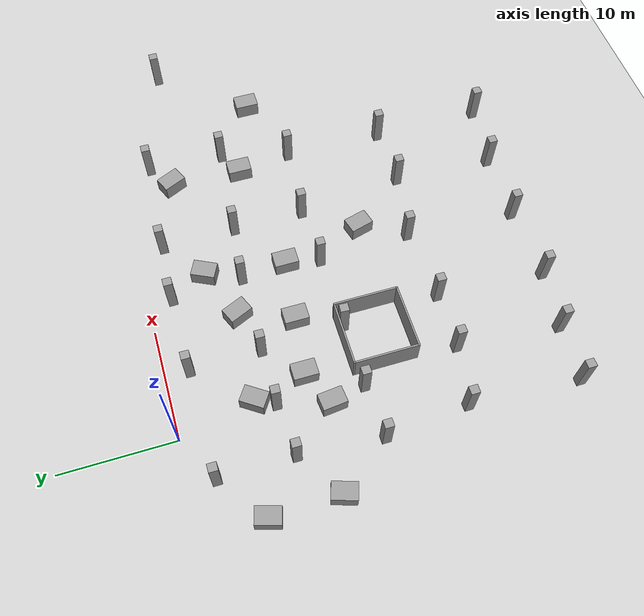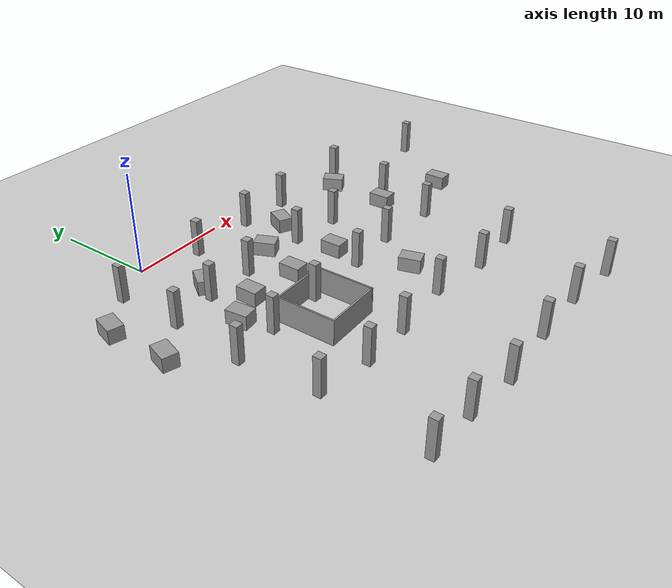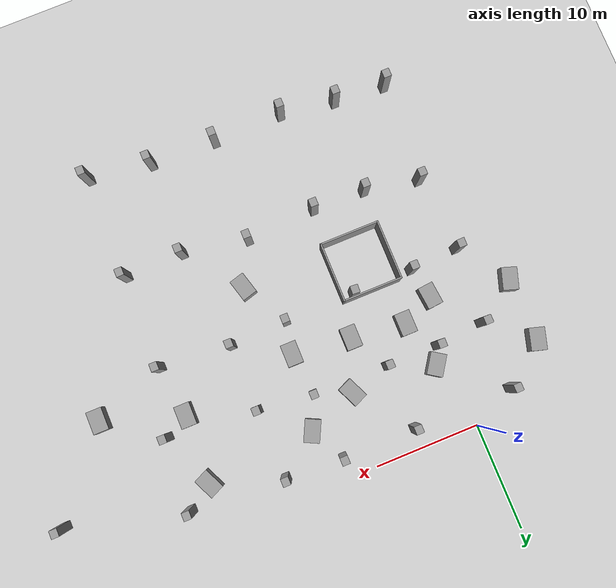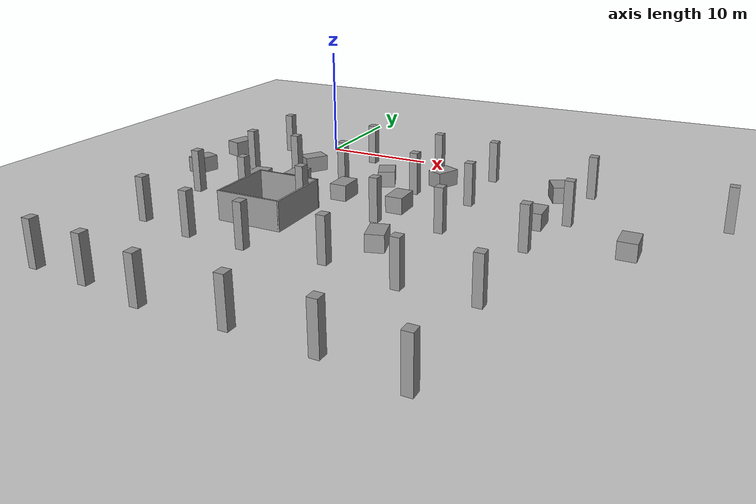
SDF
<sdf version="1.6">
 <world name="default">
  <model name="ground_plane">
   <static>1</static>
   <link name="link">
    <collision name="collision">
     <geometry><plane><normal>0 0 1</normal><size>100 100</size></plane></geometry>
     <surface><friction><ode><mu>100</mu><mu2>50</mu2></ode></friction></surface>
    </collision>
    <visual name="visual">
     <cast_shadows>0</cast_shadows>
     <geometry><plane><normal>0 0 1</normal><size>100 100</size></plane></geometry>
     <material>
      <script><uri>file://media/materials/scripts/gazebo.material</uri><name>Gazebo/Grey</name></script>
     </material>
    </visual>
    <velocity_decay><linear>0</linear><angular>0</angular></velocity_decay>
   </link>
  </model>
  <model name="vRoom">
   <pose>4.29627 -17.9422 0 0 -0 0</pose>
   <link name="Wall_0">
    <collision name="Wall_0_Collision">
     <geometry><box><size>5.75 0.15 2.5</size></box></geometry>
     <pose>0 0 1.25 0 -0 0</pose>
    </collision>
    <visual name="Wall_0_Visual">
     <pose>0 0 1.25 0 -0 0</pose>
     <geometry><box><size>5.75 0.15 2.5</size></box></geometry>
     <material>
      <script><uri>file://media/materials/scripts/gazebo.material</uri><name>Gazebo/Grey</name></script>
      <ambient>1 1 1 1</ambient>
     </material>
    </visual>
    <pose>-2.8 -0 0 0 0 -1.5708</pose>
    <velocity_decay><linear>0</linear><angular>0</angular></velocity_decay>
   </link>
   <link name="Wall_1">
    <collision name="Wall_1_Collision">
     <geometry><box><size>5.75 0.15 2.5</size></box></geometry>
     <pose>0 0 1.25 0 -0 0</pose>
    </collision>
    <visual name="Wall_1_Visual">
     <pose>0 0 1.25 0 -0 0</pose>
     <geometry><box><size>5.75 0.15 2.5</size></box></geometry>
     <material>
      <script><uri>file://media/materials/scripts/gazebo.material</uri><name>Gazebo/Grey</name></script>
      <ambient>1 1 1 1</ambient>
     </material>
    </visual>
    <pose>0 -2.8 0 0 -0 0</pose>
    <velocity_decay><linear>0</linear><angular>0</angular></velocity_decay>
   </link>
   <link name="Wall_2">
    <collision name="Wall_2_Collision">
     <geometry><box><size>5.75 0.15 2.5</size></box></geometry>
     <pose>0 0 1.25 0 -0 0</pose>
    </collision>
    <visual name="Wall_2_Visual">
     <pose>0 0 1.25 0 -0 0</pose>
     <geometry><box><size>5.75 0.15 2.5</size></box></geometry>
     <material>
      <script><uri>file://media/materials/scripts/gazebo.material</uri><name>Gazebo/Grey</name></script>
      <ambient>1 1 1 1</ambient>
     </material>
    </visual>
    <pose>2.8 -0 0 0 -0 1.5708</pose>
    <velocity_decay><linear>0</linear><angular>0</angular></velocity_decay>
   </link>
   <link name="Wall_3">
    <collision name="Wall_3_Collision">
     <geometry><box><size>5.75 0.15 2.5</size></box></geometry>
     <pose>0 0 1.25 0 -0 0</pose>
    </collision>
    <visual name="Wall_3_Visual">
     <pose>0 0 1.25 0 -0 0</pose>
     <geometry><box><size>5.75 0.15 2.5</size></box></geometry>
     <material>
      <script><uri>file://media/materials/scripts/gazebo.material</uri><name>Gazebo/Grey</name></script>
      <ambient>1 1 1 1</ambient>
     </material>
    </visual>
    <pose>0 2.8 0 0 -0 3.14159</pose>
    <velocity_decay><linear>0</linear><angular>0</angular></velocity_decay>
   </link>
   <static>1</static>
  </model>
  <model name="unit_box_0_clone_4">
   <pose>12.5297 -2.06953 1.85358 0 -0 0.000503</pose>
   <link name="link">
    <inertial>
     <mass>1</mass>
     <inertia>
      <ixx>0.166667</ixx>
      <ixy>0</ixy>
      <ixz>0</ixz>
      <iyy>0.166667</iyy>
      <iyz>0</iyz>
      <izz>0.166667</izz>
     </inertia>
    </inertial>
    <collision name="collision"><geometry><box><size>0.721478 0.765781 3.70716</size></box></geometry></collision>
    <visual name="visual">
     <geometry><box><size>0.721478 0.765781 3.70716</size></box></geometry>
     <material>
      <script><name>Gazebo/Grey</name><uri>file://media/materials/scripts/gazebo.material</uri></script>
     </material>
    </visual>
   </link>
  </model>
  <model name="unit_box_0_clone_5">
   <pose>5.51383 -2.08188 1.85358 0 -0 0.000236</pose>
   <link name="link">
    <inertial>
     <mass>1</mass>
     <inertia>
      <ixx>0.166667</ixx>
      <ixy>0</ixy>
      <ixz>0</ixz>
      <iyy>0.166667</iyy>
      <iyz>0</iyz>
      <izz>0.166667</izz>
     </inertia>
    </inertial>
    <collision name="collision"><geometry><box><size>0.721478 0.765781 3.70716</size></box></geometry></collision>
    <visual name="visual">
     <geometry><box><size>0.721478 0.765781 3.70716</size></box></geometry>
     <material>
      <script><name>Gazebo/Grey</name><uri>file://media/materials/scripts/gazebo.material</uri></script>
     </material>
    </visual>
   </link>
  </model>
  <model name="unit_box_0_clone_7">
   <pose>12.8613 -8.40418 1.85358 0 1e-06 0.000448</pose>
   <link name="link">
    <inertial>
     <mass>1</mass>
     <inertia>
      <ixx>0.166667</ixx>
      <ixy>0</ixy>
      <ixz>0</ixz>
      <iyy>0.166667</iyy>
      <iyz>0</iyz>
      <izz>0.166667</izz>
     </inertia>
    </inertial>
    <collision name="collision"><geometry><box><size>0.721478 0.765781 3.70716</size></box></geometry></collision>
    <visual name="visual">
     <geometry><box><size>0.721478 0.765781 3.70716</size></box></geometry>
     <material>
      <script><name>Gazebo/Grey</name><uri>file://media/materials/scripts/gazebo.material</uri></script>
     </material>
    </visual>
   </link>
  </model>
  <model name="unit_box_0_clone_8">
   <pose>5.62258 -8.27771 1.85358 -1e-06 1e-06 0.000661</pose>
   <link name="link">
    <inertial>
     <mass>1</mass>
     <inertia>
      <ixx>0.166667</ixx>
      <ixy>0</ixy>
      <ixz>0</ixz>
      <iyy>0.166667</iyy>
      <iyz>0</iyz>
      <izz>0.166667</izz>
     </inertia>
    </inertial>
    <collision name="collision"><geometry><box><size>0.721478 0.765781 3.70716</size></box></geometry></collision>
    <visual name="visual">
     <geometry><box><size>0.721478 0.765781 3.70716</size></box></geometry>
     <material>
      <script><name>Gazebo/Grey</name><uri>file://media/materials/scripts/gazebo.material</uri></script>
     </material>
    </visual>
   </link>
  </model>
  <model name="unit_box_0_clone_9">
   <pose>0.635478 -8.25329 1.85358 1e-06 -0 -0.026828</pose>
   <link name="link">
    <inertial>
     <mass>1</mass>
     <inertia>
      <ixx>0.166667</ixx>
      <ixy>0</ixy>
      <ixz>0</ixz>
      <iyy>0.166667</iyy>
      <iyz>0</iyz>
      <izz>0.166667</izz>
     </inertia>
    </inertial>
    <collision name="collision"><geometry><box><size>0.721478 0.765781 3.70716</size></box></geometry></collision>
    <visual name="visual">
     <geometry><box><size>0.721478 0.765781 3.70716</size></box></geometry>
     <material>
      <script><name>Gazebo/Grey</name><uri>file://media/materials/scripts/gazebo.material</uri></script>
     </material>
    </visual>
   </link>
  </model>
  <model name="unit_box_0_clone_11">
   <pose>17.9965 -2.35859 1.85358 -1e-06 -0 0.000227</pose>
   <link name="link">
    <inertial>
     <mass>1</mass>
     <inertia>
      <ixx>0.166667</ixx>
      <ixy>0</ixy>
      <ixz>0</ixz>
      <iyy>0.166667</iyy>
      <iyz>0</iyz>
      <izz>0.166667</izz>
     </inertia>
    </inertial>
    <collision name="collision"><geometry><box><size>0.721478 0.765781 3.70716</size></box></geometry></collision>
    <visual name="visual">
     <geometry><box><size>0.721478 0.765781 3.70716</size></box></geometry>
     <material>
      <script><name>Gazebo/Grey</name><uri>file://media/materials/scripts/gazebo.material</uri></script>
     </material>
    </visual>
   </link>
  </model>
  <model name="unit_box_0_clone_12">
   <pose>18.1183 -8.99798 1.85358 0 1e-06 0.000338</pose>
   <link name="link">
    <inertial>
     <mass>1</mass>
     <inertia>
      <ixx>0.166667</ixx>
      <ixy>0</ixy>
      <ixz>0</ixz>
      <iyy>0.166667</iyy>
      <iyz>0</iyz>
      <izz>0.166667</izz>
     </inertia>
    </inertial>
    <collision name="collision"><geometry><box><size>0.721478 0.765781 3.70716</size></box></geometry></collision>
    <visual name="visual">
     <geometry><box><size>0.721478 0.765781 3.70716</size></box></geometry>
     <material>
      <script><name>Gazebo/Grey</name><uri>file://media/materials/scripts/gazebo.material</uri></script>
     </material>
    </visual>
   </link>
  </model>
  <model name="unit_box_0_clone_22">
   <pose>18.1659 -15.412 1.85358 1e-06 -0 0.000373</pose>
   <link name="link">
    <inertial>
     <mass>1</mass>
     <inertia>
      <ixx>0.166667</ixx>
      <ixy>0</ixy>
      <ixz>0</ixz>
      <iyy>0.166667</iyy>
      <iyz>0</iyz>
      <izz>0.166667</izz>
     </inertia>
    </inertial>
    <collision name="collision"><geometry><box><size>0.721478 0.765781 3.70716</size></box></geometry></collision>
    <visual name="visual">
     <geometry><box><size>0.721478 0.765781 3.70716</size></box></geometry>
     <material>
      <script><name>Gazebo/Grey</name><uri>file://media/materials/scripts/gazebo.material</uri></script>
     </material>
    </visual>
   </link>
  </model>
  <model name="unit_box_0_clone_23">
   <pose>12.7073 -15.5893 1.85358 0 -1e-06 0.000288</pose>
   <link name="link">
    <inertial>
     <mass>1</mass>
     <inertia>
      <ixx>0.166667</ixx>
      <ixy>0</ixy>
      <ixz>0</ixz>
      <iyy>0.166667</iyy>
      <iyz>0</iyz>
      <izz>0.166667</izz>
     </inertia>
    </inertial>
    <collision name="collision"><geometry><box><size>0.721478 0.765781 3.70716</size></box></geometry></collision>
    <visual name="visual">
     <geometry><box><size>0.721478 0.765781 3.70716</size></box></geometry>
     <material>
      <script><name>Gazebo/Grey</name><uri>file://media/materials/scripts/gazebo.material</uri></script>
     </material>
    </visual>
   </link>
  </model>
  <model name="unit_box_0_clone_24">
   <pose>5.93577 -15.631 1.85358 1e-06 -0 -0.053246</pose>
   <link name="link">
    <inertial>
     <mass>1</mass>
     <inertia>
      <ixx>0.166667</ixx>
      <ixy>0</ixy>
      <ixz>0</ixz>
      <iyy>0.166667</iyy>
      <iyz>0</iyz>
      <izz>0.166667</izz>
     </inertia>
    </inertial>
    <collision name="collision"><geometry><box><size>0.721478 0.765781 3.70716</size></box></geometry></collision>
    <visual name="visual">
     <geometry><box><size>0.721478 0.765781 3.70716</size></box></geometry>
     <material>
      <script><name>Gazebo/Grey</name><uri>file://media/materials/scripts/gazebo.material</uri></script>
     </material>
    </visual>
   </link>
  </model>
  <model name="unit_box_0_clone_25">
   <pose>0.139528 -15.6324 1.85358 0 -0 0.000554</pose>
   <link name="link">
    <inertial>
     <mass>1</mass>
     <inertia>
      <ixx>0.166667</ixx>
      <ixy>0</ixy>
      <ixz>0</ixz>
      <iyy>0.166667</iyy>
      <iyz>0</iyz>
      <izz>0.166667</izz>
     </inertia>
    </inertial>
    <collision name="collision"><geometry><box><size>0.721478 0.765781 3.70716</size></box></geometry></collision>
    <visual name="visual">
     <geometry><box><size>0.721478 0.765781 3.70716</size></box></geometry>
     <material>
      <script><name>Gazebo/Grey</name><uri>file://media/materials/scripts/gazebo.material</uri></script>
     </material>
    </visual>
   </link>
  </model>
  <model name="unit_box_0_clone_26">
   <pose>-3.983 -8.63798 1.85358 0 1e-06 0.000534</pose>
   <link name="link">
    <inertial>
     <mass>1</mass>
     <inertia>
      <ixx>0.166667</ixx>
      <ixy>0</ixy>
      <ixz>0</ixz>
      <iyy>0.166667</iyy>
      <iyz>0</iyz>
      <izz>0.166667</izz>
     </inertia>
    </inertial>
    <collision name="collision"><geometry><box><size>0.721478 0.765781 3.70716</size></box></geometry></collision>
    <visual name="visual">
     <geometry><box><size>0.721478 0.765781 3.70716</size></box></geometry>
     <material>
      <script><name>Gazebo/Grey</name><uri>file://media/materials/scripts/gazebo.material</uri></script>
     </material>
    </visual>
   </link>
  </model>
  <model name="unit_box_0_clone_27">
   <pose>-4.03126 -2.1358 1.85358 0 -1e-06 0.000593</pose>
   <link name="link">
    <inertial>
     <mass>1</mass>
     <inertia>
      <ixx>0.166667</ixx>
      <ixy>0</ixy>
      <ixz>0</ixz>
      <iyy>0.166667</iyy>
      <iyz>0</iyz>
      <izz>0.166667</izz>
     </inertia>
    </inertial>
    <collision name="collision"><geometry><box><size>0.721478 0.765781 3.70716</size></box></geometry></collision>
    <visual name="visual">
     <geometry><box><size>0.721478 0.765781 3.70716</size></box></geometry>
     <material>
      <script><name>Gazebo/Grey</name><uri>file://media/materials/scripts/gazebo.material</uri></script>
     </material>
    </visual>
   </link>
  </model>
  <model name="unit_box_0_clone_30">
   <pose>-4.55169 -15.8841 1.85358 0 -0 0.000663</pose>
   <link name="link">
    <inertial>
     <mass>1</mass>
     <inertia>
      <ixx>0.166667</ixx>
      <ixy>0</ixy>
      <ixz>0</ixz>
      <iyy>0.166667</iyy>
      <iyz>0</iyz>
      <izz>0.166667</izz>
     </inertia>
    </inertial>
    <collision name="collision"><geometry><box><size>0.721478 0.765781 3.70716</size></box></geometry></collision>
    <visual name="visual">
     <geometry><box><size>0.721478 0.765781 3.70716</size></box></geometry>
     <material>
      <script><name>Gazebo/Grey</name><uri>file://media/materials/scripts/gazebo.material</uri></script>
     </material>
    </visual>
   </link>
  </model>
  <model name="unit_box_0_clone_54">
   <pose>27.0132 -2.93053 1.85358 -1e-06 0 0.000466</pose>
   <link name="link">
    <inertial>
     <mass>1</mass>
     <inertia>
      <ixx>0.166667</ixx>
      <ixy>0</ixy>
      <ixz>0</ixz>
      <iyy>0.166667</iyy>
      <iyz>0</iyz>
      <izz>0.166667</izz>
     </inertia>
    </inertial>
    <collision name="collision"><geometry><box><size>0.721478 0.765781 3.70716</size></box></geometry></collision>
    <visual name="visual">
     <geometry><box><size>0.721478 0.765781 3.70716</size></box></geometry>
     <material>
      <script><name>Gazebo/Grey</name><uri>file://media/materials/scripts/gazebo.material</uri></script>
     </material>
    </visual>
   </link>
  </model>
  <model name="unit_box_0_clone_58">
   <pose>26.6386 -9.80364 1.85358 0 1e-06 0.000443</pose>
   <link name="link">
    <inertial>
     <mass>1</mass>
     <inertia>
      <ixx>0.166667</ixx>
      <ixy>0</ixy>
      <ixz>0</ixz>
      <iyy>0.166667</iyy>
      <iyz>0</iyz>
      <izz>0.166667</izz>
     </inertia>
    </inertial>
    <collision name="collision"><geometry><box><size>0.721478 0.765781 3.70716</size></box></geometry></collision>
    <visual name="visual">
     <geometry><box><size>0.721478 0.765781 3.70716</size></box></geometry>
     <material>
      <script><name>Gazebo/Grey</name><uri>file://media/materials/scripts/gazebo.material</uri></script>
     </material>
    </visual>
   </link>
  </model>
  <model name="unit_box_0_clone_59">
   <pose>25.0003 -16.0003 1.85358 1e-06 -0 0.000584</pose>
   <link name="link">
    <inertial>
     <mass>1</mass>
     <inertia>
      <ixx>0.166667</ixx>
      <ixy>0</ixy>
      <ixz>0</ixz>
      <iyy>0.166667</iyy>
      <iyz>0</iyz>
      <izz>0.166667</izz>
     </inertia>
    </inertial>
    <collision name="collision"><geometry><box><size>0.721478 0.765781 3.70716</size></box></geometry></collision>
    <visual name="visual">
     <geometry><box><size>0.721478 0.765781 3.70716</size></box></geometry>
     <material>
      <script><name>Gazebo/Grey</name><uri>file://media/materials/scripts/gazebo.material</uri></script>
     </material>
    </visual>
   </link>
  </model>
  <model name="unit_box_0_clone_61">
   <pose>24.8619 -25.0584 1.85358 0 -0 0.000616</pose>
   <link name="link">
    <inertial>
     <mass>1</mass>
     <inertia>
      <ixx>0.166667</ixx>
      <ixy>0</ixy>
      <ixz>0</ixz>
      <iyy>0.166667</iyy>
      <iyz>0</iyz>
      <izz>0.166667</izz>
     </inertia>
    </inertial>
    <collision name="collision"><geometry><box><size>0.721478 0.765781 3.70716</size></box></geometry></collision>
    <visual name="visual">
     <geometry><box><size>0.721478 0.765781 3.70716</size></box></geometry>
     <material>
      <script><name>Gazebo/Grey</name><uri>file://media/materials/scripts/gazebo.material</uri></script>
     </material>
    </visual>
   </link>
  </model>
  <model name="unit_box_0_clone_62">
   <pose>19.256 -25.1216 1.85358 -0 1e-06 0.00056</pose>
   <link name="link">
    <inertial>
     <mass>1</mass>
     <inertia>
      <ixx>0.166667</ixx>
      <ixy>0</ixy>
      <ixz>0</ixz>
      <iyy>0.166667</iyy>
      <iyz>0</iyz>
      <izz>0.166667</izz>
     </inertia>
    </inertial>
    <collision name="collision"><geometry><box><size>0.721478 0.765781 3.70716</size></box></geometry></collision>
    <visual name="visual">
     <geometry><box><size>0.721478 0.765781 3.70716</size></box></geometry>
     <material>
      <script><name>Gazebo/Grey</name><uri>file://media/materials/scripts/gazebo.material</uri></script>
     </material>
    </visual>
   </link>
  </model>
  <model name="unit_box_0_clone_63">
   <pose>13.0781 -23.975 1.85358 -1e-06 0 0.000516</pose>
   <link name="link">
    <inertial>
     <mass>1</mass>
     <inertia>
      <ixx>0.166667</ixx>
      <ixy>0</ixy>
      <ixz>0</ixz>
      <iyy>0.166667</iyy>
      <iyz>0</iyz>
      <izz>0.166667</izz>
     </inertia>
    </inertial>
    <collision name="collision"><geometry><box><size>0.721478 0.765781 3.70716</size></box></geometry></collision>
    <visual name="visual">
     <geometry><box><size>0.721478 0.765781 3.70716</size></box></geometry>
     <material>
      <script><name>Gazebo/Grey</name><uri>file://media/materials/scripts/gazebo.material</uri></script>
     </material>
    </visual>
   </link>
  </model>
  <model name="unit_box_0_clone_64">
   <pose>6.37901 -24.3612 1.85358 -1e-06 -0 0.000672</pose>
   <link name="link">
    <inertial>
     <mass>1</mass>
     <inertia>
      <ixx>0.166667</ixx>
      <ixy>0</ixy>
      <ixz>0</ixz>
      <iyy>0.166667</iyy>
      <iyz>0</iyz>
      <izz>0.166667</izz>
     </inertia>
    </inertial>
    <collision name="collision"><geometry><box><size>0.721478 0.765781 3.70716</size></box></geometry></collision>
    <visual name="visual">
     <geometry><box><size>0.721478 0.765781 3.70716</size></box></geometry>
     <material>
      <script><name>Gazebo/Grey</name><uri>file://media/materials/scripts/gazebo.material</uri></script>
     </material>
    </visual>
   </link>
  </model>
  <model name="unit_box_0_clone_65">
   <pose>1.30954 -24.2258 1.85358 -0 1e-06 0.000911</pose>
   <link name="link">
    <inertial>
     <mass>1</mass>
     <inertia>
      <ixx>0.166667</ixx>
      <ixy>0</ixy>
      <ixz>0</ixz>
      <iyy>0.166667</iyy>
      <iyz>0</iyz>
      <izz>0.166667</izz>
     </inertia>
    </inertial>
    <collision name="collision"><geometry><box><size>0.721478 0.765781 3.70716</size></box></geometry></collision>
    <visual name="visual">
     <geometry><box><size>0.721478 0.765781 3.70716</size></box></geometry>
     <material>
      <script><name>Gazebo/Grey</name><uri>file://media/materials/scripts/gazebo.material</uri></script>
     </material>
    </visual>
   </link>
  </model>
  <model name="unit_box_0_clone_66">
   <pose>-3.86682 -23.2442 1.85358 -0 1e-06 0.000501</pose>
   <link name="link">
    <inertial>
     <mass>1</mass>
     <inertia>
      <ixx>0.166667</ixx>
      <ixy>0</ixy>
      <ixz>0</ixz>
      <iyy>0.166667</iyy>
      <iyz>0</iyz>
      <izz>0.166667</izz>
     </inertia>
    </inertial>
    <collision name="collision"><geometry><box><size>0.721478 0.765781 3.70716</size></box></geometry></collision>
    <visual name="visual">
     <geometry><box><size>0.721478 0.765781 3.70716</size></box></geometry>
     <material>
      <script><name>Gazebo/Grey</name><uri>file://media/materials/scripts/gazebo.material</uri></script>
     </material>
    </visual>
   </link>
  </model>
  <model name="unit_box_0_clone_78">
   <pose>24.8324 -35.0893 1.85358 0 -0 0.000706</pose>
   <link name="link">
    <inertial>
     <mass>1</mass>
     <inertia>
      <ixx>0.166667</ixx>
      <ixy>0</ixy>
      <ixz>0</ixz>
      <iyy>0.166667</iyy>
      <iyz>0</iyz>
      <izz>0.166667</izz>
     </inertia>
    </inertial>
    <collision name="collision"><geometry><box><size>0.721478 0.765781 3.70716</size></box></geometry></collision>
    <visual name="visual">
     <geometry><box><size>0.721478 0.765781 3.70716</size></box></geometry>
     <material>
      <script><name>Gazebo/Grey</name><uri>file://media/materials/scripts/gazebo.material</uri></script>
     </material>
    </visual>
   </link>
  </model>
  <model name="unit_box_0_clone_79">
   <pose>18.8354 -34.2018 1.85358 1e-06 -0 0.000419</pose>
   <link name="link">
    <inertial>
     <mass>1</mass>
     <inertia>
      <ixx>0.166667</ixx>
      <ixy>0</ixy>
      <ixz>0</ixz>
      <iyy>0.166667</iyy>
      <iyz>0</iyz>
      <izz>0.166667</izz>
     </inertia>
    </inertial>
    <collision name="collision"><geometry><box><size>0.721478 0.765781 3.70716</size></box></geometry></collision>
    <visual name="visual">
     <geometry><box><size>0.721478 0.765781 3.70716</size></box></geometry>
     <material>
      <script><name>Gazebo/Grey</name><uri>file://media/materials/scripts/gazebo.material</uri></script>
     </material>
    </visual>
   </link>
  </model>
  <model name="unit_box_0_clone_80">
   <pose>12.5106 -34.0002 1.85358 1e-06 -0 0.000716</pose>
   <link name="link">
    <inertial>
     <mass>1</mass>
     <inertia>
      <ixx>0.166667</ixx>
      <ixy>0</ixy>
      <ixz>0</ixz>
      <iyy>0.166667</iyy>
      <iyz>0</iyz>
      <izz>0.166667</izz>
     </inertia>
    </inertial>
    <collision name="collision"><geometry><box><size>0.721478 0.765781 3.70716</size></box></geometry></collision>
    <visual name="visual">
     <geometry><box><size>0.721478 0.765781 3.70716</size></box></geometry>
     <material>
      <script><name>Gazebo/Grey</name><uri>file://media/materials/scripts/gazebo.material</uri></script>
     </material>
    </visual>
   </link>
  </model>
  <model name="unit_box_0_clone_81">
   <pose>5.7904 -34.1231 1.85358 0 -0 0.000674</pose>
   <link name="link">
    <inertial>
     <mass>1</mass>
     <inertia>
      <ixx>0.166667</ixx>
      <ixy>0</ixy>
      <ixz>0</ixz>
      <iyy>0.166667</iyy>
      <iyz>0</iyz>
      <izz>0.166667</izz>
     </inertia>
    </inertial>
    <collision name="collision"><geometry><box><size>0.721478 0.765781 3.70716</size></box></geometry></collision>
    <visual name="visual">
     <geometry><box><size>0.721478 0.765781 3.70716</size></box></geometry>
     <material>
      <script><name>Gazebo/Grey</name><uri>file://media/materials/scripts/gazebo.material</uri></script>
     </material>
    </visual>
   </link>
  </model>
  <model name="unit_box_0_clone_82">
   <pose>0.536219 -33.3458 1.85358 1e-06 -0 0.00076</pose>
   <link name="link">
    <inertial>
     <mass>1</mass>
     <inertia>
      <ixx>0.166667</ixx>
      <ixy>0</ixy>
      <ixz>0</ixz>
      <iyy>0.166667</iyy>
      <iyz>0</iyz>
      <izz>0.166667</izz>
     </inertia>
    </inertial>
    <collision name="collision"><geometry><box><size>0.721478 0.765781 3.70716</size></box></geometry></collision>
    <visual name="visual">
     <geometry><box><size>0.721478 0.765781 3.70716</size></box></geometry>
     <material>
      <script><name>Gazebo/Grey</name><uri>file://media/materials/scripts/gazebo.material</uri></script>
     </material>
    </visual>
   </link>
  </model>
  <model name="unit_box_0_clone_83">
   <pose>-4.44136 -32.9997 1.85358 1e-06 -0 0.000665</pose>
   <link name="link">
    <inertial>
     <mass>1</mass>
     <inertia>
      <ixx>0.166667</ixx>
      <ixy>0</ixy>
      <ixz>0</ixz>
      <iyy>0.166667</iyy>
      <iyz>0</iyz>
      <izz>0.166667</izz>
     </inertia>
    </inertial>
    <collision name="collision"><geometry><box><size>0.721478 0.765781 3.70716</size></box></geometry></collision>
    <visual name="visual">
     <geometry><box><size>0.721478 0.765781 3.70716</size></box></geometry>
     <material>
      <script><name>Gazebo/Grey</name><uri>file://media/materials/scripts/gazebo.material</uri></script>
     </material>
    </visual>
   </link>
  </model>
  <model name="unit_box_0_clone_98">
   <pose>38.1188 -5.86778 1.85358 -1e-06 1e-06 0.000554</pose>
   <link name="link">
    <inertial>
     <mass>1</mass>
     <inertia>
      <ixx>0.166667</ixx>
      <ixy>0</ixy>
      <ixz>0</ixz>
      <iyy>0.166667</iyy>
      <iyz>0</iyz>
      <izz>0.166667</izz>
     </inertia>
    </inertial>
    <collision name="collision"><geometry><box><size>0.721478 0.765781 3.70716</size></box></geometry></collision>
    <visual name="visual">
     <geometry><box><size>0.721478 0.765781 3.70716</size></box></geometry>
     <material>
      <script><name>Gazebo/Grey</name><uri>file://media/materials/scripts/gazebo.material</uri></script>
     </material>
    </visual>
   </link>
  </model>
  <model name="unit_box_1_clone_3">
   <pose>9.52513 -7.19719 0.7011 0 -0 0.415071</pose>
   <link name="link">
    <inertial>
     <mass>1</mass>
     <inertia>
      <ixx>0.166667</ixx>
      <ixy>0</ixy>
      <ixz>0</ixz>
      <iyy>0.166667</iyy>
      <iyz>0</iyz>
      <izz>0.166667</izz>
     </inertia>
    </inertial>
    <collision name="collision"><geometry><box><size>1.47892 2.13104 1.4022</size></box></geometry></collision>
    <visual name="visual">
     <geometry><box><size>1.47892 2.13104 1.4022</size></box></geometry>
     <material>
      <script><name>Gazebo/Grey</name><uri>file://media/materials/scripts/gazebo.material</uri></script>
     </material>
    </visual>
   </link>
  </model>
  <model name="unit_box_1_clone_7">
   <pose>1.43604 -6.63018 0.701095 -4e-06 0 -0.595851</pose>
   <link name="link">
    <inertial>
     <mass>1</mass>
     <inertia>
      <ixx>0.166667</ixx>
      <ixy>0</ixy>
      <ixz>0</ixz>
      <iyy>0.166667</iyy>
      <iyz>0</iyz>
      <izz>0.166667</izz>
     </inertia>
    </inertial>
    <collision name="collision"><geometry><box><size>1.47892 2.13104 1.4022</size></box></geometry></collision>
    <visual name="visual">
     <geometry><box><size>1.47892 2.13104 1.4022</size></box></geometry>
     <material>
      <script><name>Gazebo/Grey</name><uri>file://media/materials/scripts/gazebo.material</uri></script>
     </material>
    </visual>
   </link>
  </model>
  <model name="unit_box_1_clone_9">
   <pose>-7.94691 -11.3433 0.701095 0 6e-06 -0.313974</pose>
   <link name="link">
    <inertial>
     <mass>1</mass>
     <inertia>
      <ixx>0.166667</ixx>
      <ixy>0</ixy>
      <ixz>0</ixz>
      <iyy>0.166667</iyy>
      <iyz>0</iyz>
      <izz>0.166667</izz>
     </inertia>
    </inertial>
    <collision name="collision"><geometry><box><size>1.47892 2.13104 1.4022</size></box></geometry></collision>
    <visual name="visual">
     <geometry><box><size>1.47892 2.13104 1.4022</size></box></geometry>
     <material>
      <script><name>Gazebo/Grey</name><uri>file://media/materials/scripts/gazebo.material</uri></script>
     </material>
    </visual>
   </link>
  </model>
  <model name="unit_box_1_clone_10">
   <pose>-0.514745 -12.6728 0.7011 0 -0 0.10192</pose>
   <link name="link">
    <inertial>
     <mass>1</mass>
     <inertia>
      <ixx>0.166667</ixx>
      <ixy>0</ixy>
      <ixz>0</ixz>
      <iyy>0.166667</iyy>
      <iyz>0</iyz>
      <izz>0.166667</izz>
     </inertia>
    </inertial>
    <collision name="collision"><geometry><box><size>1.47892 2.13104 1.4022</size></box></geometry></collision>
    <visual name="visual">
     <geometry><box><size>1.47892 2.13104 1.4022</size></box></geometry>
     <material>
      <script><name>Gazebo/Grey</name><uri>file://media/materials/scripts/gazebo.material</uri></script>
     </material>
    </visual>
   </link>
  </model>
  <model name="unit_box_1_clone_11">
   <pose>7.73841 -11.8803 0.7011 0 -0 1.9e-05</pose>
   <link name="link">
    <inertial>
     <mass>1</mass>
     <inertia>
      <ixx>0.166667</ixx>
      <ixy>0</ixy>
      <ixz>0</ixz>
      <iyy>0.166667</iyy>
      <iyz>0</iyz>
      <izz>0.166667</izz>
     </inertia>
    </inertial>
    <collision name="collision"><geometry><box><size>1.47892 2.13104 1.4022</size></box></geometry></collision>
    <visual name="visual">
     <geometry><box><size>1.47892 2.13104 1.4022</size></box></geometry>
     <material>
      <script><name>Gazebo/Grey</name><uri>file://media/materials/scripts/gazebo.material</uri></script>
     </material>
    </visual>
   </link>
  </model>
  <model name="unit_box_1_clone_12">
   <pose>13.3257 -12.5401 0.7011 0 -0 1.9e-05</pose>
   <link name="link">
    <inertial>
     <mass>1</mass>
     <inertia>
      <ixx>0.166667</ixx>
      <ixy>0</ixy>
      <ixz>0</ixz>
      <iyy>0.166667</iyy>
      <iyz>0</iyz>
      <izz>0.166667</izz>
     </inertia>
    </inertial>
    <collision name="collision"><geometry><box><size>1.47892 2.13104 1.4022</size></box></geometry></collision>
    <visual name="visual">
     <geometry><box><size>1.47892 2.13104 1.4022</size></box></geometry>
     <material>
      <script><name>Gazebo/Grey</name><uri>file://media/materials/scripts/gazebo.material</uri></script>
     </material>
    </visual>
   </link>
  </model>
  <model name="unit_box_1_clone_13">
   <pose>15.1539 -19.9824 0.7011 0 -0 0.268742</pose>
   <link name="link">
    <inertial>
     <mass>1</mass>
     <inertia>
      <ixx>0.166667</ixx>
      <ixy>0</ixy>
      <ixz>0</ixz>
      <iyy>0.166667</iyy>
      <iyz>0</iyz>
      <izz>0.166667</izz>
     </inertia>
    </inertial>
    <collision name="collision"><geometry><box><size>1.47892 2.13104 1.4022</size></box></geometry></collision>
    <visual name="visual">
     <geometry><box><size>1.47892 2.13104 1.4022</size></box></geometry>
     <material>
      <script><name>Gazebo/Grey</name><uri>file://media/materials/scripts/gazebo.material</uri></script>
     </material>
    </visual>
   </link>
  </model>
  <model name="unit_box_1_clone_18">
   <pose>24.3792 -11.0292 0.701095 0 6e-06 1.9e-05</pose>
   <link name="link">
    <inertial>
     <mass>1</mass>
     <inertia>
      <ixx>0.166667</ixx>
      <ixy>0</ixy>
      <ixz>0</ixz>
      <iyy>0.166667</iyy>
      <iyz>0</iyz>
      <izz>0.166667</izz>
     </inertia>
    </inertial>
    <collision name="collision"><geometry><box><size>1.47892 2.13104 1.4022</size></box></geometry></collision>
    <visual name="visual">
     <geometry><box><size>1.47892 2.13104 1.4022</size></box></geometry>
     <material>
      <script><name>Gazebo/Grey</name><uri>file://media/materials/scripts/gazebo.material</uri></script>
     </material>
    </visual>
   </link>
  </model>
  <model name="unit_box_1_clone_19">
   <pose>31.9313 -13.6023 0.701095 0 6e-06 1.9e-05</pose>
   <link name="link">
    <inertial>
     <mass>1</mass>
     <inertia>
      <ixx>0.166667</ixx>
      <ixy>0</ixy>
      <ixz>0</ixz>
      <iyy>0.166667</iyy>
      <iyz>0</iyz>
      <izz>0.166667</izz>
     </inertia>
    </inertial>
    <collision name="collision"><geometry><box><size>1.47892 2.13104 1.4022</size></box></geometry></collision>
    <visual name="visual">
     <geometry><box><size>1.47892 2.13104 1.4022</size></box></geometry>
     <material>
      <script><name>Gazebo/Grey</name><uri>file://media/materials/scripts/gazebo.material</uri></script>
     </material>
    </visual>
   </link>
  </model>
  <model name="unit_box_1_clone_23">
   <pose>-8.0612 -5.25715 0.701095 0 6e-06 -0.28111</pose>
   <link name="link">
    <inertial>
     <mass>1</mass>
     <inertia>
      <ixx>0.166667</ixx>
      <ixy>0</ixy>
      <ixz>0</ixz>
      <iyy>0.166667</iyy>
      <iyz>0</iyz>
      <izz>0.166667</izz>
     </inertia>
    </inertial>
    <collision name="collision"><geometry><box><size>1.47892 2.13104 1.4022</size></box></geometry></collision>
    <visual name="visual">
     <geometry><box><size>1.47892 2.13104 1.4022</size></box></geometry>
     <material>
      <script><name>Gazebo/Grey</name><uri>file://media/materials/scripts/gazebo.material</uri></script>
     </material>
    </visual>
   </link>
  </model>
  <model name="unit_box_1_clone_24">
   <pose>2.57389 -11.1888 0.7011 0 -0 1.9e-05</pose>
   <link name="link">
    <inertial>
     <mass>1</mass>
     <inertia>
      <ixx>0.166667</ixx>
      <ixy>0</ixy>
      <ixz>0</ixz>
      <iyy>0.166667</iyy>
      <iyz>0</iyz>
      <izz>0.166667</izz>
     </inertia>
    </inertial>
    <collision name="collision"><geometry><box><size>1.47892 2.13104 1.4022</size></box></geometry></collision>
    <visual name="visual">
     <geometry><box><size>1.47892 2.13104 1.4022</size></box></geometry>
     <material>
      <script><name>Gazebo/Grey</name><uri>file://media/materials/scripts/gazebo.material</uri></script>
     </material>
    </visual>
   </link>
  </model>
  <model name="unit_box_1_clone_25">
   <pose>14.2427 -5.3775 0.701095 4e-06 -0 -0.454102</pose>
   <link name="link">
    <inertial>
     <mass>1</mass>
     <inertia>
      <ixx>0.166667</ixx>
      <ixy>0</ixy>
      <ixz>0</ixz>
      <iyy>0.166667</iyy>
      <iyz>0</iyz>
      <izz>0.166667</izz>
     </inertia>
    </inertial>
    <collision name="collision"><geometry><box><size>1.47892 2.13104 1.4022</size></box></geometry></collision>
    <visual name="visual">
     <geometry><box><size>1.47892 2.13104 1.4022</size></box></geometry>
     <material>
      <script><name>Gazebo/Grey</name><uri>file://media/materials/scripts/gazebo.material</uri></script>
     </material>
    </visual>
   </link>
  </model>
  <model name="unit_box_1_clone_26">
   <pose>24.6226 -4.55351 0.701095 -4e-06 -0 0.439059</pose>
   <link name="link">
    <inertial>
     <mass>1</mass>
     <inertia>
      <ixx>0.166667</ixx>
      <ixy>0</ixy>
      <ixz>0</ixz>
      <iyy>0.166667</iyy>
      <iyz>0</iyz>
      <izz>0.166667</izz>
     </inertia>
    </inertial>
    <collision name="collision"><geometry><box><size>1.47892 2.13104 1.4022</size></box></geometry></collision>
    <visual name="visual">
     <geometry><box><size>1.47892 2.13104 1.4022</size></box></geometry>
     <material>
      <script><name>Gazebo/Grey</name><uri>file://media/materials/scripts/gazebo.material</uri></script>
     </material>
    </visual>
   </link>
  </model>
 </world>
</sdf>
